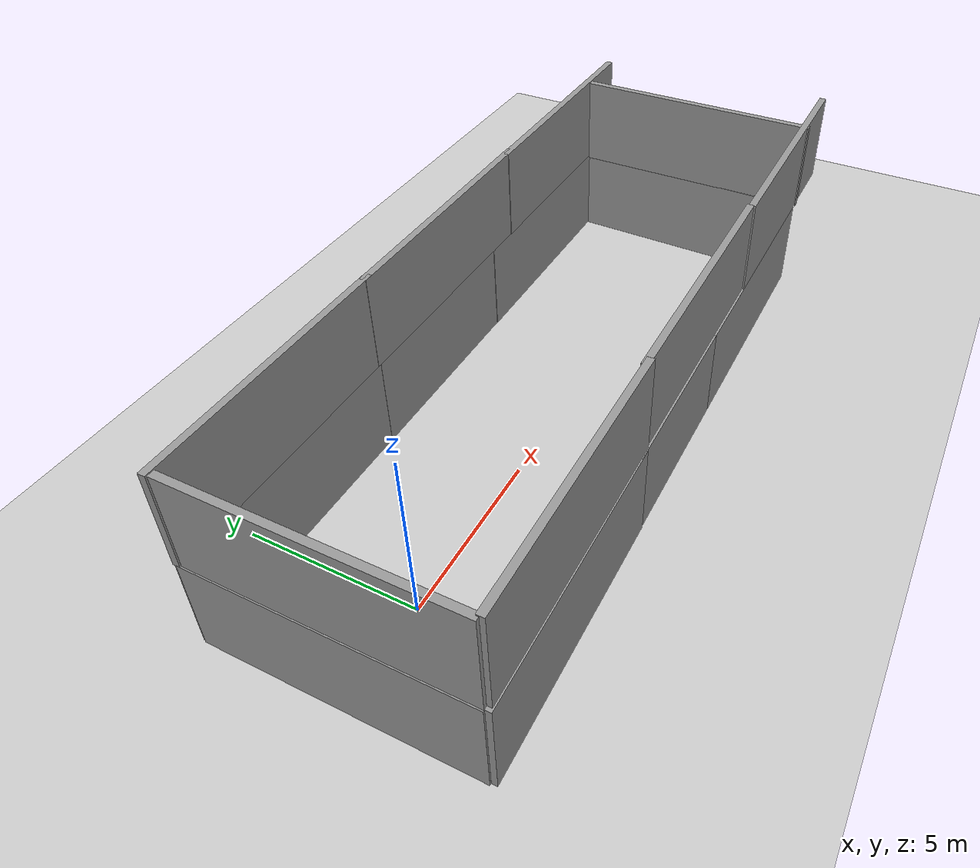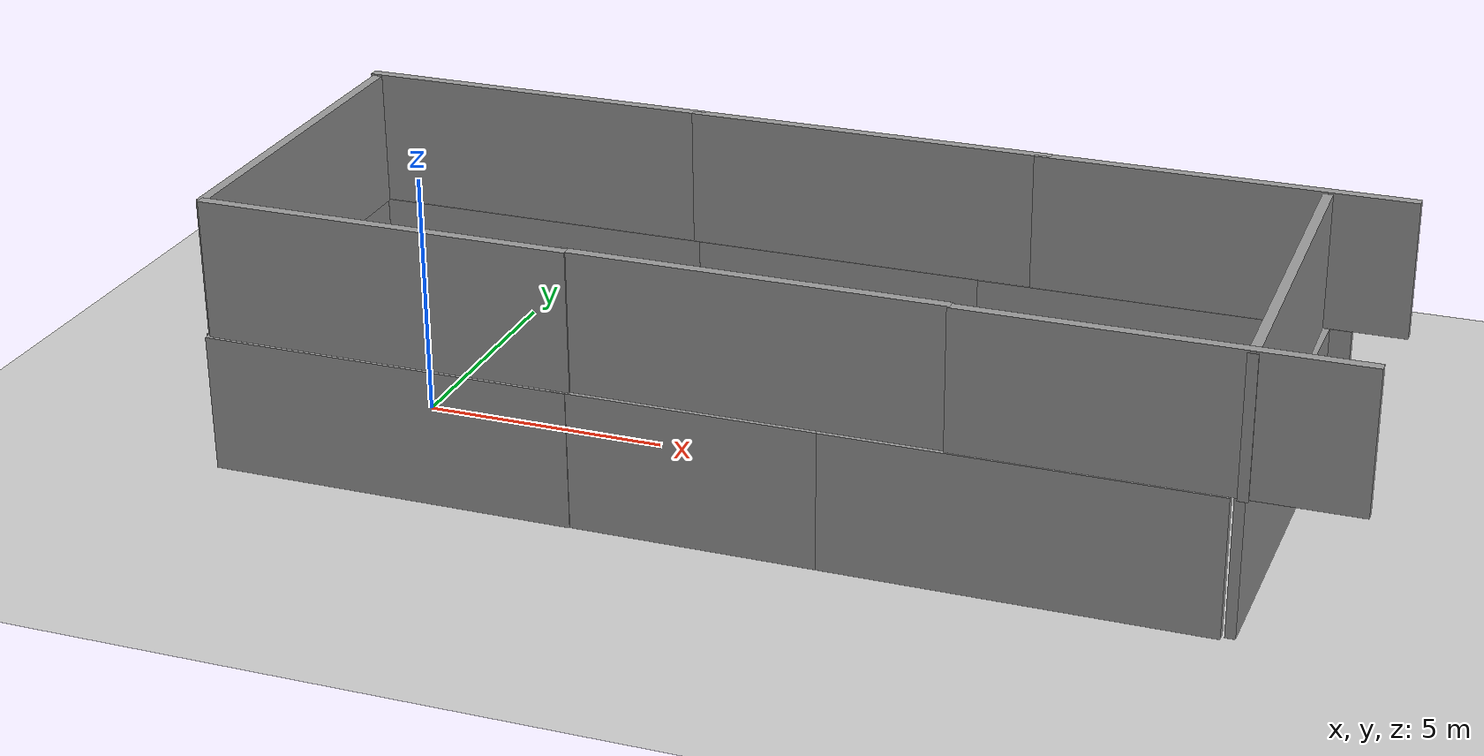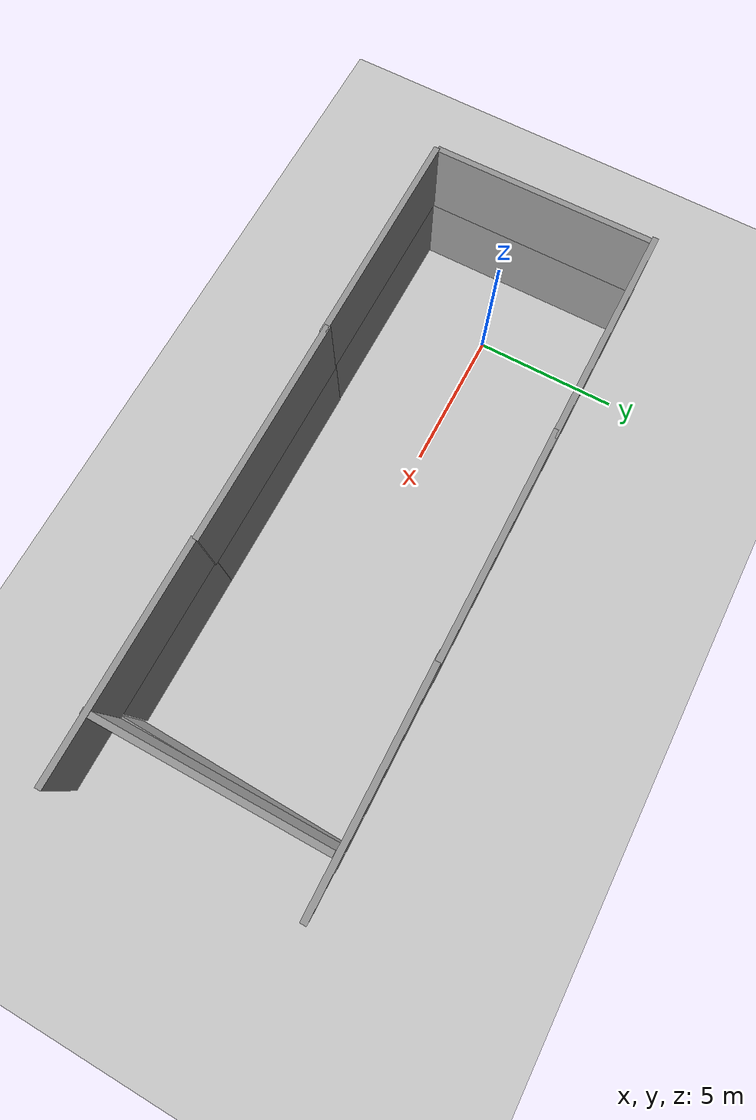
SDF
<sdf version="1.6">
 <world name="default">
  <light name="sun" type="directional">
   <pose>0 0 10 0 -0 0</pose>
   <diffuse>0.8 0.8 0.8 1</diffuse>
   <specular>0.2 0.2 0.2 1</specular>
   <attenuation>
    <range>1000</range>
    <constant>0.9</constant>
    <linear>0.01</linear>
    <quadratic>0.001</quadratic>
   </attenuation>
   <direction>-0.5 0.1 -0.9</direction>
  </light>
  <model name="ground_plane">
   <static>1</static>
   <link name="link">
    <collision name="collision">
     <geometry><plane><normal>0 0 1</normal><size>100 100</size></plane></geometry>
     <surface>
      <contact><collide_bitmask>65535</collide_bitmask></contact>
      <friction><ode><mu>100</mu><mu2>50</mu2></ode></friction>
     </surface>
    </collision>
    <visual name="visual">
     <cast_shadows>0</cast_shadows>
     <geometry><plane><normal>0 0 1</normal><size>100 100</size></plane></geometry>
     <material>
      <script><uri>file://media/materials/scripts/gazebo.material</uri><name>Gazebo/Grey</name></script>
     </material>
    </visual>
   </link>
  </model>
  <gravity>0 0 -9.8</gravity>
  <magnetic_field>6e-06 2.3e-05 -4.2e-05</magnetic_field>
  <atmosphere type="adiabatic"/>
  <physics name="default_physics" default="0" type="ode">
   <max_step_size>0.001</max_step_size>
   <real_time_factor>1</real_time_factor>
   <real_time_update_rate>1000</real_time_update_rate>
  </physics>
  <scene><ambient>0.4 0.4 0.4 1</ambient><background>0.7 0.7 0.7 1</background><shadows>1</shadows></scene>
  <audio><device>default</device></audio>
  <spherical_coordinates>
   <surface_model>EARTH_WGS84</surface_model>
   <latitude_deg>0</latitude_deg>
   <longitude_deg>0</longitude_deg>
   <elevation>0</elevation>
   <heading_deg>0</heading_deg>
  </spherical_coordinates>
  <model name="grey_wall">
   <static>1</static>
   <link name="link">
    <pose>0 0 1.4 0 -0 0</pose>
    <collision name="collision"><geometry><box><size>7.5 0.2 2.8</size></box></geometry></collision>
    <visual name="visual">
     <cast_shadows>0</cast_shadows>
     <geometry><box><size>7.5 0.2 2.8</size></box></geometry>
     <material>
      <script>
       <uri>model://grey_wall/materials/scripts</uri>
       <uri>model://grey_wall/materials/textures</uri>
       <name>vrc/grey_wall</name>
      </script>
     </material>
    </visual>
   </link>
   <pose>1.01817 -3.63173 2.81516 0 -0 0</pose>
  </model>
  <model name="grey_wall_0">
   <static>1</static>
   <link name="link">
    <pose>0 0 1.4 0 -0 0</pose>
    <collision name="collision"><geometry><box><size>7.5 0.2 2.8</size></box></geometry></collision>
    <visual name="visual">
     <cast_shadows>0</cast_shadows>
     <geometry><box><size>7.5 0.2 2.8</size></box></geometry>
     <material>
      <script>
       <uri>model://grey_wall/materials/scripts</uri>
       <uri>model://grey_wall/materials/textures</uri>
       <name>vrc/grey_wall</name>
      </script>
     </material>
    </visual>
   </link>
   <pose>0.863619 3.87178 0 0 -0 0</pose>
  </model>
  <model name="grey_wall_1">
   <static>1</static>
   <link name="link">
    <pose>0 0 1.4 0 -0 0</pose>
    <collision name="collision"><geometry><box><size>7.5 0.2 2.8</size></box></geometry></collision>
    <visual name="visual">
     <cast_shadows>0</cast_shadows>
     <geometry><box><size>7.5 0.2 2.8</size></box></geometry>
     <material>
      <script>
       <uri>model://grey_wall/materials/scripts</uri>
       <uri>model://grey_wall/materials/textures</uri>
       <name>vrc/grey_wall</name>
      </script>
     </material>
    </visual>
   </link>
   <pose>-2.79655 0.139299 0 0 0 -1.56381</pose>
  </model>
  <model name="grey_wall_2">
   <static>1</static>
   <link name="link">
    <pose>0 0 1.4 0 -0 0</pose>
    <collision name="collision"><geometry><box><size>7.5 0.2 2.8</size></box></geometry></collision>
    <visual name="visual">
     <cast_shadows>0</cast_shadows>
     <geometry><box><size>7.5 0.2 2.8</size></box></geometry>
     <material>
      <script>
       <uri>model://grey_wall/materials/scripts</uri>
       <uri>model://grey_wall/materials/textures</uri>
       <name>vrc/grey_wall</name>
      </script>
     </material>
    </visual>
   </link>
   <pose>8.12594 -3.64959 0 0 -0 0</pose>
  </model>
  <model name="grey_wall_3">
   <static>1</static>
   <link name="link">
    <pose>0 0 1.4 0 -0 0</pose>
    <collision name="collision"><geometry><box><size>7.5 0.2 2.8</size></box></geometry></collision>
    <visual name="visual">
     <cast_shadows>0</cast_shadows>
     <geometry><box><size>7.5 0.2 2.8</size></box></geometry>
     <material>
      <script>
       <uri>model://grey_wall/materials/scripts</uri>
       <uri>model://grey_wall/materials/textures</uri>
       <name>vrc/grey_wall</name>
      </script>
     </material>
    </visual>
   </link>
   <pose>8.17557 3.86775 0 0 -0 0</pose>
  </model>
  <model name="grey_wall_4">
   <static>1</static>
   <link name="link">
    <pose>0 0 1.4 0 -0 0</pose>
    <collision name="collision"><geometry><box><size>7.5 0.2 2.8</size></box></geometry></collision>
    <visual name="visual">
     <cast_shadows>0</cast_shadows>
     <geometry><box><size>7.5 0.2 2.8</size></box></geometry>
     <material>
      <script>
       <uri>model://grey_wall/materials/scripts</uri>
       <uri>model://grey_wall/materials/textures</uri>
       <name>vrc/grey_wall</name>
      </script>
     </material>
    </visual>
   </link>
   <pose>13.3251 -3.65072 0 0 -0 0</pose>
  </model>
  <model name="grey_wall_5">
   <static>1</static>
   <link name="link">
    <pose>0 0 1.4 0 -0 0</pose>
    <collision name="collision"><geometry><box><size>7.5 0.2 2.8</size></box></geometry></collision>
    <visual name="visual">
     <cast_shadows>0</cast_shadows>
     <geometry><box><size>7.5 0.2 2.8</size></box></geometry>
     <material>
      <script>
       <uri>model://grey_wall/materials/scripts</uri>
       <uri>model://grey_wall/materials/textures</uri>
       <name>vrc/grey_wall</name>
      </script>
     </material>
    </visual>
   </link>
   <pose>14.1542 3.85196 0 0 -0 0</pose>
  </model>
  <model name="grey_wall_6">
   <static>1</static>
   <link name="link">
    <pose>0 0 1.4 0 -0 0</pose>
    <collision name="collision"><geometry><box><size>7.5 0.2 2.8</size></box></geometry></collision>
    <visual name="visual">
     <cast_shadows>0</cast_shadows>
     <geometry><box><size>7.5 0.2 2.8</size></box></geometry>
     <material>
      <script>
       <uri>model://grey_wall/materials/scripts</uri>
       <uri>model://grey_wall/materials/textures</uri>
       <name>vrc/grey_wall</name>
      </script>
     </material>
    </visual>
   </link>
   <pose>17.3052 0.09085 0 0 0 -1.59084</pose>
  </model>
  <model name="grey_wall_7">
   <static>1</static>
   <link name="link">
    <pose>0 0 1.4 0 -0 0</pose>
    <collision name="collision"><geometry><box><size>7.5 0.2 2.8</size></box></geometry></collision>
    <visual name="visual">
     <cast_shadows>0</cast_shadows>
     <geometry><box><size>7.5 0.2 2.8</size></box></geometry>
     <material>
      <script>
       <uri>model://grey_wall/materials/scripts</uri>
       <uri>model://grey_wall/materials/textures</uri>
       <name>vrc/grey_wall</name>
      </script>
     </material>
    </visual>
   </link>
   <pose>0.932106 -3.66577 0 0 -0 0</pose>
  </model>
  <model name="grey_wall_clone">
   <static>1</static>
   <link name="link">
    <pose>0 0 1.4 0 -0 0</pose>
    <collision name="collision"><geometry><box><size>7.5 0.2 2.8</size></box></geometry></collision>
    <visual name="visual">
     <cast_shadows>0</cast_shadows>
     <geometry><box><size>7.5 0.2 2.8</size></box></geometry>
     <material>
      <script>
       <uri>model://grey_wall/materials/scripts</uri>
       <uri>model://grey_wall/materials/textures</uri>
       <name>vrc/grey_wall</name>
      </script>
     </material>
    </visual>
   </link>
   <pose>8.24846 -3.5942 2.81516 0 -0 0</pose>
  </model>
  <model name="grey_wall_clone_clone">
   <static>1</static>
   <link name="link">
    <pose>0 0 1.4 0 -0 0</pose>
    <collision name="collision"><geometry><box><size>7.5 0.2 2.8</size></box></geometry></collision>
    <visual name="visual">
     <cast_shadows>0</cast_shadows>
     <geometry><box><size>7.5 0.2 2.8</size></box></geometry>
     <material>
      <script>
       <uri>model://grey_wall/materials/scripts</uri>
       <uri>model://grey_wall/materials/textures</uri>
       <name>vrc/grey_wall</name>
      </script>
     </material>
    </visual>
   </link>
   <pose>15.7014 -3.641 2.81516 0 -0 0</pose>
  </model>
  <model name="grey_wall_1_clone">
   <static>1</static>
   <link name="link">
    <pose>0 0 1.4 0 -0 0</pose>
    <collision name="collision"><geometry><box><size>7.5 0.2 2.8</size></box></geometry></collision>
    <visual name="visual">
     <cast_shadows>0</cast_shadows>
     <geometry><box><size>7.5 0.2 2.8</size></box></geometry>
     <material>
      <script>
       <uri>model://grey_wall/materials/scripts</uri>
       <uri>model://grey_wall/materials/textures</uri>
       <name>vrc/grey_wall</name>
      </script>
     </material>
    </visual>
   </link>
   <pose>-2.76051 0.144853 2.78242 0 0 -1.56381</pose>
  </model>
  <model name="grey_wall_clone_0">
   <static>1</static>
   <link name="link">
    <pose>0 0 1.4 0 -0 0</pose>
    <collision name="collision"><geometry><box><size>7.5 0.2 2.8</size></box></geometry></collision>
    <visual name="visual">
     <cast_shadows>0</cast_shadows>
     <geometry><box><size>7.5 0.2 2.8</size></box></geometry>
     <material>
      <script>
       <uri>model://grey_wall/materials/scripts</uri>
       <uri>model://grey_wall/materials/textures</uri>
       <name>vrc/grey_wall</name>
      </script>
     </material>
    </visual>
   </link>
   <pose>0.820876 3.85847 2.81516 0 -0 0</pose>
  </model>
  <model name="grey_wall_clone_1">
   <static>1</static>
   <link name="link">
    <pose>0 0 1.4 0 -0 0</pose>
    <collision name="collision"><geometry><box><size>7.5 0.2 2.8</size></box></geometry></collision>
    <visual name="visual">
     <cast_shadows>0</cast_shadows>
     <geometry><box><size>7.5 0.2 2.8</size></box></geometry>
     <material>
      <script>
       <uri>model://grey_wall/materials/scripts</uri>
       <uri>model://grey_wall/materials/textures</uri>
       <name>vrc/grey_wall</name>
      </script>
     </material>
    </visual>
   </link>
   <pose>8.06011 3.85106 2.81516 0 -0 0</pose>
  </model>
  <model name="grey_wall_clone_2">
   <static>1</static>
   <link name="link">
    <pose>0 0 1.4 0 -0 0</pose>
    <collision name="collision"><geometry><box><size>7.5 0.2 2.8</size></box></geometry></collision>
    <visual name="visual">
     <cast_shadows>0</cast_shadows>
     <geometry><box><size>7.5 0.2 2.8</size></box></geometry>
     <material>
      <script>
       <uri>model://grey_wall/materials/scripts</uri>
       <uri>model://grey_wall/materials/textures</uri>
       <name>vrc/grey_wall</name>
      </script>
     </material>
    </visual>
   </link>
   <pose>15.2353 3.83298 2.81516 0 -0 0</pose>
  </model>
  <model name="grey_wall_1_clone_clone">
   <static>1</static>
   <link name="link">
    <pose>0 0 1.4 0 -0 0</pose>
    <collision name="collision"><geometry><box><size>7.5 0.2 2.8</size></box></geometry></collision>
    <visual name="visual">
     <cast_shadows>0</cast_shadows>
     <geometry><box><size>7.5 0.2 2.8</size></box></geometry>
     <material>
      <script>
       <uri>model://grey_wall/materials/scripts</uri>
       <uri>model://grey_wall/materials/textures</uri>
       <name>vrc/grey_wall</name>
      </script>
     </material>
    </visual>
   </link>
   <pose>17.2716 -0.026044 2.78242 0 0 -1.56381</pose>
  </model>
 </world>
</sdf>
